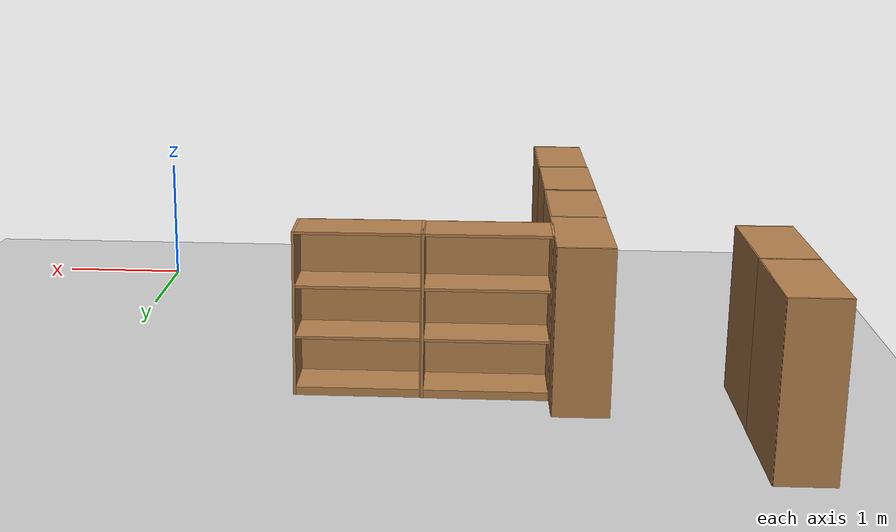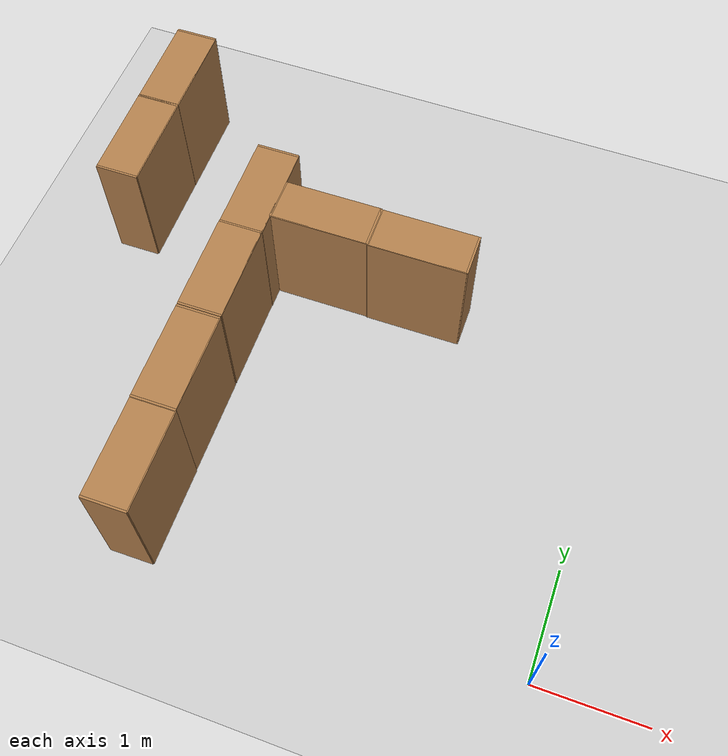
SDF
<sdf version="1.6">
 <world name="default">
  <light name="sun" type="directional">
   <pose>0 0 10 0 -0 0</pose>
   <diffuse>0.8 0.8 0.8 1</diffuse>
   <specular>0.2 0.2 0.2 1</specular>
   <attenuation>
    <range>1000</range>
    <constant>0.9</constant>
    <linear>0.01</linear>
    <quadratic>0.001</quadratic>
   </attenuation>
   <direction>-0.5 0.1 -0.9</direction>
  </light>
  <model name="ground_plane">
   <static>1</static>
   <link name="link">
    <collision name="collision">
     <geometry><plane><normal>0 0 1</normal><size>100 100</size></plane></geometry>
     <surface>
      <contact><collide_bitmask>65535</collide_bitmask></contact>
      <friction><ode><mu>100</mu><mu2>50</mu2></ode></friction>
     </surface>
    </collision>
    <visual name="visual">
     <cast_shadows>0</cast_shadows>
     <geometry><plane><normal>0 0 1</normal><size>100 100</size></plane></geometry>
     <material>
      <script><uri>file://media/materials/scripts/gazebo.material</uri><name>Gazebo/Grey</name></script>
     </material>
    </visual>
   </link>
  </model>
  <physics name="default_physics" default="0" type="ode">
   <real_time_update_rate>1000</real_time_update_rate>
   <max_step_size>0.001</max_step_size>
   <real_time_factor>1</real_time_factor>
   <ode>
    <solver>
     <type>quick</type>
     <iters>150</iters>
     <precon_iters>0</precon_iters>
     <sor>1.4</sor>
     <use_dynamic_moi_rescaling>1</use_dynamic_moi_rescaling>
    </solver>
    <constraints>
     <cfm>1e-05</cfm>
     <erp>0.2</erp>
     <contact_max_correcting_vel>2000</contact_max_correcting_vel>
     <contact_surface_layer>0.01</contact_surface_layer>
    </constraints>
   </ode>
  </physics>
  <scene><ambient>0.4 0.4 0.4 1</ambient><background>0.7 0.7 0.7 1</background><shadows>1</shadows></scene>
  <gravity>0 0 -9.8</gravity>
  <magnetic_field>6e-06 2.3e-05 -4.2e-05</magnetic_field>
  <atmosphere type="adiabatic"/>
  <audio><device>default</device></audio>
  <spherical_coordinates>
   <surface_model>EARTH_WGS84</surface_model>
   <latitude_deg>0</latitude_deg>
   <longitude_deg>0</longitude_deg>
   <elevation>0</elevation>
   <heading_deg>0</heading_deg>
  </spherical_coordinates>
  <model name="bookshelf_2_clone_0">
   <static>1</static>
   <link name="link">
    <inertial><mass>1</mass></inertial>
    <collision name="back">
     <pose>0 0.005 0.6 0 -0 0</pose>
     <geometry><box><size>0.9 0.01 1.2</size></box></geometry>
    </collision>
    <visual name="visual1">
     <pose>0 0.005 0.6 0 -0 0</pose>
     <geometry><box><size>0.9 0.01 1.2</size></box></geometry>
     <material>
      <script><uri>file://media/materials/scripts/gazebo.material</uri><name>Gazebo/Wood</name></script>
     </material>
    </visual>
    <collision name="left_side">
     <pose>0.45 -0.195 0.6 0 -0 0</pose>
     <geometry><box><size>0.02 0.4 1.2</size></box></geometry>
    </collision>
    <visual name="visual2">
     <pose>0.45 -0.195 0.6 0 -0 0</pose>
     <geometry><box><size>0.02 0.4 1.2</size></box></geometry>
     <material>
      <script><uri>file://media/materials/scripts/gazebo.material</uri><name>Gazebo/Wood</name></script>
     </material>
    </visual>
    <collision name="right_side">
     <pose>-0.45 -0.195 0.6 0 -0 0</pose>
     <geometry><box><size>0.02 0.4 1.2</size></box></geometry>
    </collision>
    <visual name="visual3">
     <pose>-0.45 -0.195 0.6 0 -0 0</pose>
     <geometry><box><size>0.02 0.4 1.2</size></box></geometry>
     <material>
      <script><uri>file://media/materials/scripts/gazebo.material</uri><name>Gazebo/Wood</name></script>
     </material>
    </visual>
    <collision name="bottom">
     <pose>0 -0.195 0.03 0 -0 0</pose>
     <geometry><box><size>0.88 0.4 0.06</size></box></geometry>
    </collision>
    <visual name="visual4">
     <pose>0 -0.195 0.03 0 -0 0</pose>
     <geometry><box><size>0.88 0.4 0.06</size></box></geometry>
     <material>
      <script><uri>file://media/materials/scripts/gazebo.material</uri><name>Gazebo/Wood</name></script>
     </material>
    </visual>
    <collision name="top">
     <pose>0 -0.195 1.19 0 -0 0</pose>
     <geometry><box><size>0.88 0.4 0.02</size></box></geometry>
    </collision>
    <visual name="visual5">
     <pose>0 -0.195 1.19 0 -0 0</pose>
     <geometry><box><size>0.88 0.4 0.02</size></box></geometry>
     <material>
      <script><uri>file://media/materials/scripts/gazebo.material</uri><name>Gazebo/Wood</name></script>
     </material>
    </visual>
    <collision name="low_shelf">
     <pose>0 -0.195 0.43 0 -0 0</pose>
     <geometry><box><size>0.88 0.4 0.02</size></box></geometry>
    </collision>
    <visual name="visual6">
     <pose>0 -0.195 0.43 0 -0 0</pose>
     <geometry><box><size>0.88 0.4 0.02</size></box></geometry>
     <material>
      <script><uri>file://media/materials/scripts/gazebo.material</uri><name>Gazebo/Wood</name></script>
     </material>
    </visual>
    <collision name="high_shelf">
     <pose>0 -0.195 0.8 0 -0 0</pose>
     <geometry><box><size>0.88 0.4 0.02</size></box></geometry>
    </collision>
    <visual name="visual7">
     <pose>0 -0.195 0.8 0 -0 0</pose>
     <geometry><box><size>0.88 0.4 0.02</size></box></geometry>
     <material>
      <script><uri>file://media/materials/scripts/gazebo.material</uri><name>Gazebo/Wood</name></script>
     </material>
    </visual>
   </link>
   <pose>-3.26916 0.34095 0 0 -0 -1.55878</pose>
  </model>
  <model name="bookshelf_2_clone_0_clone">
   <static>1</static>
   <link name="link">
    <inertial><mass>1</mass></inertial>
    <collision name="back">
     <pose>0 0.005 0.6 0 -0 0</pose>
     <geometry><box><size>0.9 0.01 1.2</size></box></geometry>
    </collision>
    <visual name="visual1">
     <pose>0 0.005 0.6 0 -0 0</pose>
     <geometry><box><size>0.9 0.01 1.2</size></box></geometry>
     <material>
      <script><uri>file://media/materials/scripts/gazebo.material</uri><name>Gazebo/Wood</name></script>
     </material>
    </visual>
    <collision name="left_side">
     <pose>0.45 -0.195 0.6 0 -0 0</pose>
     <geometry><box><size>0.02 0.4 1.2</size></box></geometry>
    </collision>
    <visual name="visual2">
     <pose>0.45 -0.195 0.6 0 -0 0</pose>
     <geometry><box><size>0.02 0.4 1.2</size></box></geometry>
     <material>
      <script><uri>file://media/materials/scripts/gazebo.material</uri><name>Gazebo/Wood</name></script>
     </material>
    </visual>
    <collision name="right_side">
     <pose>-0.45 -0.195 0.6 0 -0 0</pose>
     <geometry><box><size>0.02 0.4 1.2</size></box></geometry>
    </collision>
    <visual name="visual3">
     <pose>-0.45 -0.195 0.6 0 -0 0</pose>
     <geometry><box><size>0.02 0.4 1.2</size></box></geometry>
     <material>
      <script><uri>file://media/materials/scripts/gazebo.material</uri><name>Gazebo/Wood</name></script>
     </material>
    </visual>
    <collision name="bottom">
     <pose>0 -0.195 0.03 0 -0 0</pose>
     <geometry><box><size>0.88 0.4 0.06</size></box></geometry>
    </collision>
    <visual name="visual4">
     <pose>0 -0.195 0.03 0 -0 0</pose>
     <geometry><box><size>0.88 0.4 0.06</size></box></geometry>
     <material>
      <script><uri>file://media/materials/scripts/gazebo.material</uri><name>Gazebo/Wood</name></script>
     </material>
    </visual>
    <collision name="top">
     <pose>0 -0.195 1.19 0 -0 0</pose>
     <geometry><box><size>0.88 0.4 0.02</size></box></geometry>
    </collision>
    <visual name="visual5">
     <pose>0 -0.195 1.19 0 -0 0</pose>
     <geometry><box><size>0.88 0.4 0.02</size></box></geometry>
     <material>
      <script><uri>file://media/materials/scripts/gazebo.material</uri><name>Gazebo/Wood</name></script>
     </material>
    </visual>
    <collision name="low_shelf">
     <pose>0 -0.195 0.43 0 -0 0</pose>
     <geometry><box><size>0.88 0.4 0.02</size></box></geometry>
    </collision>
    <visual name="visual6">
     <pose>0 -0.195 0.43 0 -0 0</pose>
     <geometry><box><size>0.88 0.4 0.02</size></box></geometry>
     <material>
      <script><uri>file://media/materials/scripts/gazebo.material</uri><name>Gazebo/Wood</name></script>
     </material>
    </visual>
    <collision name="high_shelf">
     <pose>0 -0.195 0.8 0 -0 0</pose>
     <geometry><box><size>0.88 0.4 0.02</size></box></geometry>
    </collision>
    <visual name="visual7">
     <pose>0 -0.195 0.8 0 -0 0</pose>
     <geometry><box><size>0.88 0.4 0.02</size></box></geometry>
     <material>
      <script><uri>file://media/materials/scripts/gazebo.material</uri><name>Gazebo/Wood</name></script>
     </material>
    </visual>
   </link>
   <pose>-3.28475 1.24602 0 0 0 -1.55878</pose>
  </model>
  <model name="bookshelf_2_clone_0_clone_0">
   <static>1</static>
   <link name="link">
    <inertial><mass>1</mass></inertial>
    <collision name="back">
     <pose>0 0.005 0.6 0 -0 0</pose>
     <geometry><box><size>0.9 0.01 1.2</size></box></geometry>
    </collision>
    <visual name="visual1">
     <pose>0 0.005 0.6 0 -0 0</pose>
     <geometry><box><size>0.9 0.01 1.2</size></box></geometry>
     <material>
      <script><uri>file://media/materials/scripts/gazebo.material</uri><name>Gazebo/Wood</name></script>
     </material>
    </visual>
    <collision name="left_side">
     <pose>0.45 -0.195 0.6 0 -0 0</pose>
     <geometry><box><size>0.02 0.4 1.2</size></box></geometry>
    </collision>
    <visual name="visual2">
     <pose>0.45 -0.195 0.6 0 -0 0</pose>
     <geometry><box><size>0.02 0.4 1.2</size></box></geometry>
     <material>
      <script><uri>file://media/materials/scripts/gazebo.material</uri><name>Gazebo/Wood</name></script>
     </material>
    </visual>
    <collision name="right_side">
     <pose>-0.45 -0.195 0.6 0 -0 0</pose>
     <geometry><box><size>0.02 0.4 1.2</size></box></geometry>
    </collision>
    <visual name="visual3">
     <pose>-0.45 -0.195 0.6 0 -0 0</pose>
     <geometry><box><size>0.02 0.4 1.2</size></box></geometry>
     <material>
      <script><uri>file://media/materials/scripts/gazebo.material</uri><name>Gazebo/Wood</name></script>
     </material>
    </visual>
    <collision name="bottom">
     <pose>0 -0.195 0.03 0 -0 0</pose>
     <geometry><box><size>0.88 0.4 0.06</size></box></geometry>
    </collision>
    <visual name="visual4">
     <pose>0 -0.195 0.03 0 -0 0</pose>
     <geometry><box><size>0.88 0.4 0.06</size></box></geometry>
     <material>
      <script><uri>file://media/materials/scripts/gazebo.material</uri><name>Gazebo/Wood</name></script>
     </material>
    </visual>
    <collision name="top">
     <pose>0 -0.195 1.19 0 -0 0</pose>
     <geometry><box><size>0.88 0.4 0.02</size></box></geometry>
    </collision>
    <visual name="visual5">
     <pose>0 -0.195 1.19 0 -0 0</pose>
     <geometry><box><size>0.88 0.4 0.02</size></box></geometry>
     <material>
      <script><uri>file://media/materials/scripts/gazebo.material</uri><name>Gazebo/Wood</name></script>
     </material>
    </visual>
    <collision name="low_shelf">
     <pose>0 -0.195 0.43 0 -0 0</pose>
     <geometry><box><size>0.88 0.4 0.02</size></box></geometry>
    </collision>
    <visual name="visual6">
     <pose>0 -0.195 0.43 0 -0 0</pose>
     <geometry><box><size>0.88 0.4 0.02</size></box></geometry>
     <material>
      <script><uri>file://media/materials/scripts/gazebo.material</uri><name>Gazebo/Wood</name></script>
     </material>
    </visual>
    <collision name="high_shelf">
     <pose>0 -0.195 0.8 0 -0 0</pose>
     <geometry><box><size>0.88 0.4 0.02</size></box></geometry>
    </collision>
    <visual name="visual7">
     <pose>0 -0.195 0.8 0 -0 0</pose>
     <geometry><box><size>0.88 0.4 0.02</size></box></geometry>
     <material>
      <script><uri>file://media/materials/scripts/gazebo.material</uri><name>Gazebo/Wood</name></script>
     </material>
    </visual>
   </link>
   <pose>-3.29627 2.16973 0 0 0 -1.55878</pose>
  </model>
  <model name="bookshelf_2_clone_0_clone_1">
   <static>1</static>
   <link name="link">
    <inertial><mass>1</mass></inertial>
    <collision name="back">
     <pose>0 0.005 0.6 0 -0 0</pose>
     <geometry><box><size>0.9 0.01 1.2</size></box></geometry>
    </collision>
    <visual name="visual1">
     <pose>0 0.005 0.6 0 -0 0</pose>
     <geometry><box><size>0.9 0.01 1.2</size></box></geometry>
     <material>
      <script><uri>file://media/materials/scripts/gazebo.material</uri><name>Gazebo/Wood</name></script>
     </material>
    </visual>
    <collision name="left_side">
     <pose>0.45 -0.195 0.6 0 -0 0</pose>
     <geometry><box><size>0.02 0.4 1.2</size></box></geometry>
    </collision>
    <visual name="visual2">
     <pose>0.45 -0.195 0.6 0 -0 0</pose>
     <geometry><box><size>0.02 0.4 1.2</size></box></geometry>
     <material>
      <script><uri>file://media/materials/scripts/gazebo.material</uri><name>Gazebo/Wood</name></script>
     </material>
    </visual>
    <collision name="right_side">
     <pose>-0.45 -0.195 0.6 0 -0 0</pose>
     <geometry><box><size>0.02 0.4 1.2</size></box></geometry>
    </collision>
    <visual name="visual3">
     <pose>-0.45 -0.195 0.6 0 -0 0</pose>
     <geometry><box><size>0.02 0.4 1.2</size></box></geometry>
     <material>
      <script><uri>file://media/materials/scripts/gazebo.material</uri><name>Gazebo/Wood</name></script>
     </material>
    </visual>
    <collision name="bottom">
     <pose>0 -0.195 0.03 0 -0 0</pose>
     <geometry><box><size>0.88 0.4 0.06</size></box></geometry>
    </collision>
    <visual name="visual4">
     <pose>0 -0.195 0.03 0 -0 0</pose>
     <geometry><box><size>0.88 0.4 0.06</size></box></geometry>
     <material>
      <script><uri>file://media/materials/scripts/gazebo.material</uri><name>Gazebo/Wood</name></script>
     </material>
    </visual>
    <collision name="top">
     <pose>0 -0.195 1.19 0 -0 0</pose>
     <geometry><box><size>0.88 0.4 0.02</size></box></geometry>
    </collision>
    <visual name="visual5">
     <pose>0 -0.195 1.19 0 -0 0</pose>
     <geometry><box><size>0.88 0.4 0.02</size></box></geometry>
     <material>
      <script><uri>file://media/materials/scripts/gazebo.material</uri><name>Gazebo/Wood</name></script>
     </material>
    </visual>
    <collision name="low_shelf">
     <pose>0 -0.195 0.43 0 -0 0</pose>
     <geometry><box><size>0.88 0.4 0.02</size></box></geometry>
    </collision>
    <visual name="visual6">
     <pose>0 -0.195 0.43 0 -0 0</pose>
     <geometry><box><size>0.88 0.4 0.02</size></box></geometry>
     <material>
      <script><uri>file://media/materials/scripts/gazebo.material</uri><name>Gazebo/Wood</name></script>
     </material>
    </visual>
    <collision name="high_shelf">
     <pose>0 -0.195 0.8 0 -0 0</pose>
     <geometry><box><size>0.88 0.4 0.02</size></box></geometry>
    </collision>
    <visual name="visual7">
     <pose>0 -0.195 0.8 0 -0 0</pose>
     <geometry><box><size>0.88 0.4 0.02</size></box></geometry>
     <material>
      <script><uri>file://media/materials/scripts/gazebo.material</uri><name>Gazebo/Wood</name></script>
     </material>
    </visual>
   </link>
   <pose>-3.30306 3.0662 0 0 0 -1.55878</pose>
  </model>
  <model name="bookshelf_2_clone_0_clone_1_clone">
   <static>1</static>
   <link name="link">
    <inertial><mass>1</mass></inertial>
    <collision name="back">
     <pose>0 0.005 0.6 0 -0 0</pose>
     <geometry><box><size>0.9 0.01 1.2</size></box></geometry>
    </collision>
    <visual name="visual1">
     <pose>0 0.005 0.6 0 -0 0</pose>
     <geometry><box><size>0.9 0.01 1.2</size></box></geometry>
     <material>
      <script><uri>file://media/materials/scripts/gazebo.material</uri><name>Gazebo/Wood</name></script>
     </material>
    </visual>
    <collision name="left_side">
     <pose>0.45 -0.195 0.6 0 -0 0</pose>
     <geometry><box><size>0.02 0.4 1.2</size></box></geometry>
    </collision>
    <visual name="visual2">
     <pose>0.45 -0.195 0.6 0 -0 0</pose>
     <geometry><box><size>0.02 0.4 1.2</size></box></geometry>
     <material>
      <script><uri>file://media/materials/scripts/gazebo.material</uri><name>Gazebo/Wood</name></script>
     </material>
    </visual>
    <collision name="right_side">
     <pose>-0.45 -0.195 0.6 0 -0 0</pose>
     <geometry><box><size>0.02 0.4 1.2</size></box></geometry>
    </collision>
    <visual name="visual3">
     <pose>-0.45 -0.195 0.6 0 -0 0</pose>
     <geometry><box><size>0.02 0.4 1.2</size></box></geometry>
     <material>
      <script><uri>file://media/materials/scripts/gazebo.material</uri><name>Gazebo/Wood</name></script>
     </material>
    </visual>
    <collision name="bottom">
     <pose>0 -0.195 0.03 0 -0 0</pose>
     <geometry><box><size>0.88 0.4 0.06</size></box></geometry>
    </collision>
    <visual name="visual4">
     <pose>0 -0.195 0.03 0 -0 0</pose>
     <geometry><box><size>0.88 0.4 0.06</size></box></geometry>
     <material>
      <script><uri>file://media/materials/scripts/gazebo.material</uri><name>Gazebo/Wood</name></script>
     </material>
    </visual>
    <collision name="top">
     <pose>0 -0.195 1.19 0 -0 0</pose>
     <geometry><box><size>0.88 0.4 0.02</size></box></geometry>
    </collision>
    <visual name="visual5">
     <pose>0 -0.195 1.19 0 -0 0</pose>
     <geometry><box><size>0.88 0.4 0.02</size></box></geometry>
     <material>
      <script><uri>file://media/materials/scripts/gazebo.material</uri><name>Gazebo/Wood</name></script>
     </material>
    </visual>
    <collision name="low_shelf">
     <pose>0 -0.195 0.43 0 -0 0</pose>
     <geometry><box><size>0.88 0.4 0.02</size></box></geometry>
    </collision>
    <visual name="visual6">
     <pose>0 -0.195 0.43 0 -0 0</pose>
     <geometry><box><size>0.88 0.4 0.02</size></box></geometry>
     <material>
      <script><uri>file://media/materials/scripts/gazebo.material</uri><name>Gazebo/Wood</name></script>
     </material>
    </visual>
    <collision name="high_shelf">
     <pose>0 -0.195 0.8 0 -0 0</pose>
     <geometry><box><size>0.88 0.4 0.02</size></box></geometry>
    </collision>
    <visual name="visual7">
     <pose>0 -0.195 0.8 0 -0 0</pose>
     <geometry><box><size>0.88 0.4 0.02</size></box></geometry>
     <material>
      <script><uri>file://media/materials/scripts/gazebo.material</uri><name>Gazebo/Wood</name></script>
     </material>
    </visual>
   </link>
   <pose>-2.84488 2.81512 0 0 0 -3.13293</pose>
  </model>
  <model name="bookshelf_2_clone_0_clone_1_clone_clone">
   <static>1</static>
   <link name="link">
    <inertial><mass>1</mass></inertial>
    <collision name="back">
     <pose>0 0.005 0.6 0 -0 0</pose>
     <geometry><box><size>0.9 0.01 1.2</size></box></geometry>
    </collision>
    <visual name="visual1">
     <pose>0 0.005 0.6 0 -0 0</pose>
     <geometry><box><size>0.9 0.01 1.2</size></box></geometry>
     <material>
      <script><uri>file://media/materials/scripts/gazebo.material</uri><name>Gazebo/Wood</name></script>
     </material>
    </visual>
    <collision name="left_side">
     <pose>0.45 -0.195 0.6 0 -0 0</pose>
     <geometry><box><size>0.02 0.4 1.2</size></box></geometry>
    </collision>
    <visual name="visual2">
     <pose>0.45 -0.195 0.6 0 -0 0</pose>
     <geometry><box><size>0.02 0.4 1.2</size></box></geometry>
     <material>
      <script><uri>file://media/materials/scripts/gazebo.material</uri><name>Gazebo/Wood</name></script>
     </material>
    </visual>
    <collision name="right_side">
     <pose>-0.45 -0.195 0.6 0 -0 0</pose>
     <geometry><box><size>0.02 0.4 1.2</size></box></geometry>
    </collision>
    <visual name="visual3">
     <pose>-0.45 -0.195 0.6 0 -0 0</pose>
     <geometry><box><size>0.02 0.4 1.2</size></box></geometry>
     <material>
      <script><uri>file://media/materials/scripts/gazebo.material</uri><name>Gazebo/Wood</name></script>
     </material>
    </visual>
    <collision name="bottom">
     <pose>0 -0.195 0.03 0 -0 0</pose>
     <geometry><box><size>0.88 0.4 0.06</size></box></geometry>
    </collision>
    <visual name="visual4">
     <pose>0 -0.195 0.03 0 -0 0</pose>
     <geometry><box><size>0.88 0.4 0.06</size></box></geometry>
     <material>
      <script><uri>file://media/materials/scripts/gazebo.material</uri><name>Gazebo/Wood</name></script>
     </material>
    </visual>
    <collision name="top">
     <pose>0 -0.195 1.19 0 -0 0</pose>
     <geometry><box><size>0.88 0.4 0.02</size></box></geometry>
    </collision>
    <visual name="visual5">
     <pose>0 -0.195 1.19 0 -0 0</pose>
     <geometry><box><size>0.88 0.4 0.02</size></box></geometry>
     <material>
      <script><uri>file://media/materials/scripts/gazebo.material</uri><name>Gazebo/Wood</name></script>
     </material>
    </visual>
    <collision name="low_shelf">
     <pose>0 -0.195 0.43 0 -0 0</pose>
     <geometry><box><size>0.88 0.4 0.02</size></box></geometry>
    </collision>
    <visual name="visual6">
     <pose>0 -0.195 0.43 0 -0 0</pose>
     <geometry><box><size>0.88 0.4 0.02</size></box></geometry>
     <material>
      <script><uri>file://media/materials/scripts/gazebo.material</uri><name>Gazebo/Wood</name></script>
     </material>
    </visual>
    <collision name="high_shelf">
     <pose>0 -0.195 0.8 0 -0 0</pose>
     <geometry><box><size>0.88 0.4 0.02</size></box></geometry>
    </collision>
    <visual name="visual7">
     <pose>0 -0.195 0.8 0 -0 0</pose>
     <geometry><box><size>0.88 0.4 0.02</size></box></geometry>
     <material>
      <script><uri>file://media/materials/scripts/gazebo.material</uri><name>Gazebo/Wood</name></script>
     </material>
    </visual>
   </link>
   <pose>-1.93658 2.81534 0 0 0 -3.13293</pose>
  </model>
  <model name="bookshelf_2_clone_0_clone_1_clone_0">
   <static>1</static>
   <link name="link">
    <inertial><mass>1</mass></inertial>
    <collision name="back">
     <pose>0 0.005 0.6 0 -0 0</pose>
     <geometry><box><size>0.9 0.01 1.2</size></box></geometry>
    </collision>
    <visual name="visual1">
     <pose>0 0.005 0.6 0 -0 0</pose>
     <geometry><box><size>0.9 0.01 1.2</size></box></geometry>
     <material>
      <script><uri>file://media/materials/scripts/gazebo.material</uri><name>Gazebo/Wood</name></script>
     </material>
    </visual>
    <collision name="left_side">
     <pose>0.45 -0.195 0.6 0 -0 0</pose>
     <geometry><box><size>0.02 0.4 1.2</size></box></geometry>
    </collision>
    <visual name="visual2">
     <pose>0.45 -0.195 0.6 0 -0 0</pose>
     <geometry><box><size>0.02 0.4 1.2</size></box></geometry>
     <material>
      <script><uri>file://media/materials/scripts/gazebo.material</uri><name>Gazebo/Wood</name></script>
     </material>
    </visual>
    <collision name="right_side">
     <pose>-0.45 -0.195 0.6 0 -0 0</pose>
     <geometry><box><size>0.02 0.4 1.2</size></box></geometry>
    </collision>
    <visual name="visual3">
     <pose>-0.45 -0.195 0.6 0 -0 0</pose>
     <geometry><box><size>0.02 0.4 1.2</size></box></geometry>
     <material>
      <script><uri>file://media/materials/scripts/gazebo.material</uri><name>Gazebo/Wood</name></script>
     </material>
    </visual>
    <collision name="bottom">
     <pose>0 -0.195 0.03 0 -0 0</pose>
     <geometry><box><size>0.88 0.4 0.06</size></box></geometry>
    </collision>
    <visual name="visual4">
     <pose>0 -0.195 0.03 0 -0 0</pose>
     <geometry><box><size>0.88 0.4 0.06</size></box></geometry>
     <material>
      <script><uri>file://media/materials/scripts/gazebo.material</uri><name>Gazebo/Wood</name></script>
     </material>
    </visual>
    <collision name="top">
     <pose>0 -0.195 1.19 0 -0 0</pose>
     <geometry><box><size>0.88 0.4 0.02</size></box></geometry>
    </collision>
    <visual name="visual5">
     <pose>0 -0.195 1.19 0 -0 0</pose>
     <geometry><box><size>0.88 0.4 0.02</size></box></geometry>
     <material>
      <script><uri>file://media/materials/scripts/gazebo.material</uri><name>Gazebo/Wood</name></script>
     </material>
    </visual>
    <collision name="low_shelf">
     <pose>0 -0.195 0.43 0 -0 0</pose>
     <geometry><box><size>0.88 0.4 0.02</size></box></geometry>
    </collision>
    <visual name="visual6">
     <pose>0 -0.195 0.43 0 -0 0</pose>
     <geometry><box><size>0.88 0.4 0.02</size></box></geometry>
     <material>
      <script><uri>file://media/materials/scripts/gazebo.material</uri><name>Gazebo/Wood</name></script>
     </material>
    </visual>
    <collision name="high_shelf">
     <pose>0 -0.195 0.8 0 -0 0</pose>
     <geometry><box><size>0.88 0.4 0.02</size></box></geometry>
    </collision>
    <visual name="visual7">
     <pose>0 -0.195 0.8 0 -0 0</pose>
     <geometry><box><size>0.88 0.4 0.02</size></box></geometry>
     <material>
      <script><uri>file://media/materials/scripts/gazebo.material</uri><name>Gazebo/Wood</name></script>
     </material>
    </visual>
   </link>
   <pose>-4.60596 4.15156 0 0 0 -1.55878</pose>
  </model>
  <model name="bookshelf_2_clone_0_clone_1_clone_0_clone">
   <static>1</static>
   <link name="link">
    <inertial><mass>1</mass></inertial>
    <collision name="back">
     <pose>0 0.005 0.6 0 -0 0</pose>
     <geometry><box><size>0.9 0.01 1.2</size></box></geometry>
    </collision>
    <visual name="visual1">
     <pose>0 0.005 0.6 0 -0 0</pose>
     <geometry><box><size>0.9 0.01 1.2</size></box></geometry>
     <material>
      <script><uri>file://media/materials/scripts/gazebo.material</uri><name>Gazebo/Wood</name></script>
     </material>
    </visual>
    <collision name="left_side">
     <pose>0.45 -0.195 0.6 0 -0 0</pose>
     <geometry><box><size>0.02 0.4 1.2</size></box></geometry>
    </collision>
    <visual name="visual2">
     <pose>0.45 -0.195 0.6 0 -0 0</pose>
     <geometry><box><size>0.02 0.4 1.2</size></box></geometry>
     <material>
      <script><uri>file://media/materials/scripts/gazebo.material</uri><name>Gazebo/Wood</name></script>
     </material>
    </visual>
    <collision name="right_side">
     <pose>-0.45 -0.195 0.6 0 -0 0</pose>
     <geometry><box><size>0.02 0.4 1.2</size></box></geometry>
    </collision>
    <visual name="visual3">
     <pose>-0.45 -0.195 0.6 0 -0 0</pose>
     <geometry><box><size>0.02 0.4 1.2</size></box></geometry>
     <material>
      <script><uri>file://media/materials/scripts/gazebo.material</uri><name>Gazebo/Wood</name></script>
     </material>
    </visual>
    <collision name="bottom">
     <pose>0 -0.195 0.03 0 -0 0</pose>
     <geometry><box><size>0.88 0.4 0.06</size></box></geometry>
    </collision>
    <visual name="visual4">
     <pose>0 -0.195 0.03 0 -0 0</pose>
     <geometry><box><size>0.88 0.4 0.06</size></box></geometry>
     <material>
      <script><uri>file://media/materials/scripts/gazebo.material</uri><name>Gazebo/Wood</name></script>
     </material>
    </visual>
    <collision name="top">
     <pose>0 -0.195 1.19 0 -0 0</pose>
     <geometry><box><size>0.88 0.4 0.02</size></box></geometry>
    </collision>
    <visual name="visual5">
     <pose>0 -0.195 1.19 0 -0 0</pose>
     <geometry><box><size>0.88 0.4 0.02</size></box></geometry>
     <material>
      <script><uri>file://media/materials/scripts/gazebo.material</uri><name>Gazebo/Wood</name></script>
     </material>
    </visual>
    <collision name="low_shelf">
     <pose>0 -0.195 0.43 0 -0 0</pose>
     <geometry><box><size>0.88 0.4 0.02</size></box></geometry>
    </collision>
    <visual name="visual6">
     <pose>0 -0.195 0.43 0 -0 0</pose>
     <geometry><box><size>0.88 0.4 0.02</size></box></geometry>
     <material>
      <script><uri>file://media/materials/scripts/gazebo.material</uri><name>Gazebo/Wood</name></script>
     </material>
    </visual>
    <collision name="high_shelf">
     <pose>0 -0.195 0.8 0 -0 0</pose>
     <geometry><box><size>0.88 0.4 0.02</size></box></geometry>
    </collision>
    <visual name="visual7">
     <pose>0 -0.195 0.8 0 -0 0</pose>
     <geometry><box><size>0.88 0.4 0.02</size></box></geometry>
     <material>
      <script><uri>file://media/materials/scripts/gazebo.material</uri><name>Gazebo/Wood</name></script>
     </material>
    </visual>
   </link>
   <pose>-4.59633 3.24969 0 0 0 -1.55878</pose>
  </model>
 </world>
</sdf>
